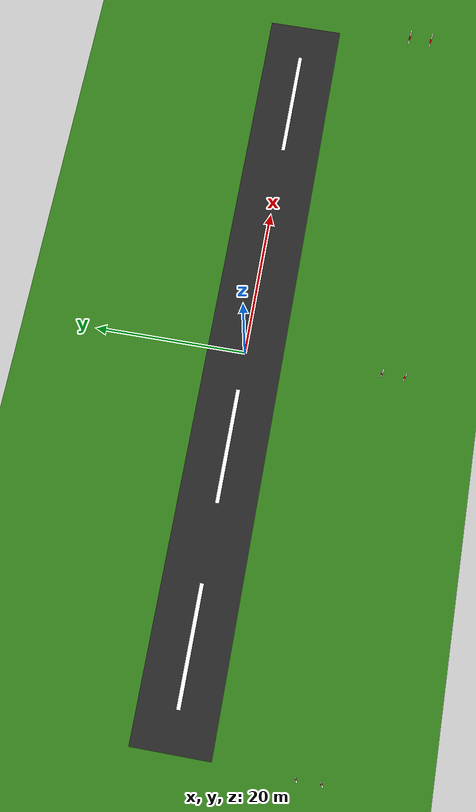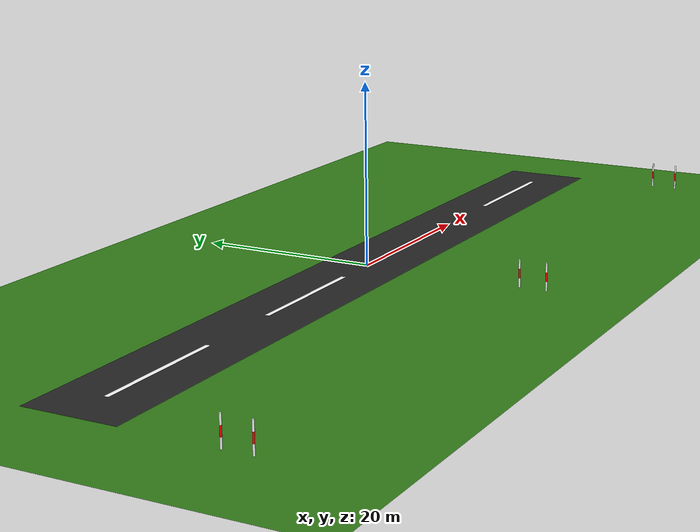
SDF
<?xml version="1.0" ?>
<sdf version="1.9">
  <world name="test">

    <atmosphere type="adiabatic"/>
    <magnetic_field>6.0e-06 2.3e-05 -4.2e-05</magnetic_field>

    <spherical_coordinates>
      <surface_model>EARTH_WGS84</surface_model>
      <world_frame_orientation>ENU</world_frame_orientation>
      <latitude_deg>41.100799</latitude_deg>
      <longitude_deg>28.551562</longitude_deg>
      <elevation>488.0</elevation>
      <heading_deg>0</heading_deg>
    </spherical_coordinates>

    <plugin filename="gz-sim-sensors-system"
            name="gz::sim::systems::Sensors">
      <render_engine>ogre2</render_engine>
    </plugin>
    <plugin filename="gz-sim-imu-system"
            name="gz::sim::systems::Imu"/>
    <plugin filename="gz-sim-air-pressure-system"
            name="gz::sim::systems::AirPressure"/>
    <plugin filename="gz-sim-navsat-system"
            name="gz::sim::systems::NavSat"/>
    <plugin filename="gz-sim-magnetometer-system"
            name="gz::sim::systems::Magnetometer"/>
    <plugin filename="gz-sim-air-speed-system"
            name="gz::sim::systems::AirSpeed"/>

    <!-- Fizik motoru -->
    <physics name="1ms" type="ignored">
      <max_step_size>0.001</max_step_size>
      <real_time_factor>1.0</real_time_factor>
    </physics>

    <!-- Gerekli eklentiler (Gazebo Sim 8 zorunlu) -->
    <plugin filename="gz-sim-physics-system"
            name="gz::sim::systems::Physics"/>
    <plugin filename="gz-sim-user-commands-system"
            name="gz::sim::systems::UserCommands"/>
    <plugin filename="gz-sim-scene-broadcaster-system"
            name="gz::sim::systems::SceneBroadcaster"/>

    <!-- Işık -->
    <light name="sun" type="directional">
      <cast_shadows>true</cast_shadows>
      <pose>0 0 10 0 0 0</pose>
      <diffuse>0.8 0.8 0.8 1</diffuse>
      <specular>0.2 0.2 0.2 1</specular>
      <direction>-0.5 0.1 -0.9</direction>
    </light>

    <!-- Zemin -->
    <model name="ground_plane">
      <static>true</static>
      <link name="link">
        <collision name="collision">
          <geometry><plane><normal>0 0 1</normal><size>500 500</size></plane></geometry>
        </collision>
        <visual name="visual">
          <geometry><plane><normal>0 0 1</normal><size>500 500</size></plane></geometry>
          <material>
            <ambient>0.2 0.5 0.1 1</ambient>
            <diffuse>0.2 0.5 0.1 1</diffuse>
          </material>
        </visual>
      </link>
    </model>

    <!--   KALKIŞ/İNİŞ PİSTİ  -->

    <!-- Pist gövdesi: 100m x 10m, merkez orijinde -->
    <model name="runway_base">
      <static>true</static>
      <pose>0 0 0.01 0 0 0</pose>
      <link name="link">
        <visual name="asphalt">
          <geometry>
            <box><size>100 10 0.01</size></box>
          </geometry>
          <material>
            <ambient>0.15 0.15 0.15 1</ambient>
            <diffuse>0.15 0.15 0.15 1</diffuse>
          </material>
        </visual>
        <collision name="col">
          <geometry><box><size>100 10 0.01</size></box></geometry>
        </collision>
      </link>
    </model>

    <!-- Merkez çizgisi (beyaz, kesik kesik için 4 parça) -->
    <!-- Aralarına 10m boşluk, her parça 15*0,5m -->
    <model name="cl_0"><static>true</static><pose>-37.5 0 0.01 0 0 0</pose>
      <link name="l"><visual name="v"><geometry><box><size>15 0.5 0.02</size></box></geometry>
        <material><ambient>1 1 1 1</ambient><diffuse>1 1 1 1</diffuse></material>
      </visual></link></model>

    <model name="cl_1"><static>true</static><pose>-12.5 0 0.01 0 0 0</pose>
      <link name="l"><visual name="v"><geometry><box><size>15 0.5 0.02</size></box></geometry>
        <material><ambient>1 1 1 1</ambient><diffuse>1 1 1 1</diffuse></material>
      </visual></link></model>

    <model name="cl_2"><static>true</static><pose>12.5 0 0.01 0 0 0</pose>
      <link name="l"><visual name="v"><geometry><box><size>15 0.5 0.02</size></box></geometry>
        <material><ambient>1 1 1 1</ambient><diffuse>1 1 1 1</diffuse></material>
      </visual></link></model>

    <model name="cl_3"><static>true</static><pose>37.5 0 0.01 0 0 0</pose>
      <link name="l"><visual name="v"><geometry><box><size>15 0.5 0.02</size></box></geometry>
        <material><ambient>1 1 1 1</ambient><diffuse>1 1 1 1</diffuse></material>
      </visual></link></model>

    <!-- Direkler-->
    <model name="pole_11">
      <static>true</static>
      <pose>-50 -15 0 0 0 0</pose>
      <link name="link_11">
        <visual name="seg_alt">
          <pose>0 0 0.5 0 0 0</pose>
          <geometry><cylinder><radius>0.10</radius><length>1.0</length></cylinder></geometry>
          <material><ambient>1 1 1 1</ambient><diffuse>1 1 1 1</diffuse></material>
        </visual>
        <collision name="seg_alt_col">
          <pose>0 0 0.5 0 0 0</pose>
          <geometry><cylinder><radius>0.10</radius><length>1.0</length></cylinder></geometry>
        </collision>

        <visual name="seg_orta">
          <pose>0 0 1.5 0 0 0</pose>
          <geometry><cylinder><radius>0.10</radius><length>1.0</length></cylinder></geometry>
          <material><ambient>1 0 0 1</ambient><diffuse>1 0 0 1</diffuse></material>
        </visual>
        <collision name="seg_orta_col">
          <pose>0 0 1.5 0 0 0</pose>
          <geometry><cylinder><radius>0.10</radius><length>1.0</length></cylinder></geometry>
        </collision>

        <visual name="seg_ust">
          <pose>0 0 2.5 0 0 0</pose>
          <geometry><cylinder><radius>0.10</radius><length>1.0</length></cylinder></geometry>
          <material><ambient>1 1 1 1</ambient><diffuse>1 1 1 1</diffuse></material>
        </visual>
        <collision name="seg_ust_col">
          <pose>0 0 2.5 0 0 0</pose>
          <geometry><cylinder><radius>0.10</radius><length>1.0</length></cylinder></geometry>
        </collision>
      </link>
    </model>

    <model name="pole_12">
      <static>true</static>
      <pose>-50 -18 0 0 0 0</pose>
      <link name="link_12">
        <visual name="seg_alt">
          <pose>0 0 0.5 0 0 0</pose>
          <geometry><cylinder><radius>0.10</radius><length>1.0</length></cylinder></geometry>
          <material><ambient>1 1 1 1</ambient><diffuse>1 1 1 1</diffuse></material>
        </visual>
        <collision name="seg_alt_col">
          <pose>0 0 0.5 0 0 0</pose>
          <geometry><cylinder><radius>0.10</radius><length>1.0</length></cylinder></geometry>
        </collision>

        <visual name="seg_orta">
          <pose>0 0 1.5 0 0 0</pose>
          <geometry><cylinder><radius>0.10</radius><length>1.0</length></cylinder></geometry>
          <material><ambient>1 0 0 1</ambient><diffuse>1 0 0 1</diffuse></material>
        </visual>
        <collision name="seg_orta_col">
          <pose>0 0 1.5 0 0 0</pose>
          <geometry><cylinder><radius>0.10</radius><length>1.0</length></cylinder></geometry>
        </collision>

        <visual name="seg_ust">
          <pose>0 0 2.5 0 0 0</pose>
          <geometry><cylinder><radius>0.10</radius><length>1.0</length></cylinder></geometry>
          <material><ambient>1 1 1 1</ambient><diffuse>1 1 1 1</diffuse></material>
        </visual>
        <collision name="seg_ust_col">
          <pose>0 0 2.5 0 0 0</pose>
          <geometry><cylinder><radius>0.10</radius><length>1.0</length></cylinder></geometry>
        </collision>
      </link>
    </model>

    <model name="pole_21">
      <static>true</static>
      <pose>0 -18 0 0 0 0</pose>
      <link name="link_21">
        <visual name="seg_alt">
          <pose>0 0 0.5 0 0 0</pose>
          <geometry><cylinder><radius>0.10</radius><length>1.0</length></cylinder></geometry>
          <material><ambient>1 1 1 1</ambient><diffuse>1 1 1 1</diffuse></material>
        </visual>
        <collision name="seg_alt_col">
          <pose>0 0 0.5 0 0 0</pose>
          <geometry><cylinder><radius>0.10</radius><length>1.0</length></cylinder></geometry>
        </collision>

        <visual name="seg_orta">
          <pose>0 0 1.5 0 0 0</pose>
          <geometry><cylinder><radius>0.10</radius><length>1.0</length></cylinder></geometry>
          <material><ambient>1 0 0 1</ambient><diffuse>1 0 0 1</diffuse></material>
        </visual>
        <collision name="seg_orta_col">
          <pose>0 0 1.5 0 0 0</pose>
          <geometry><cylinder><radius>0.10</radius><length>1.0</length></cylinder></geometry>
        </collision>

        <visual name="seg_ust">
          <pose>0 0 2.5 0 0 0</pose>
          <geometry><cylinder><radius>0.10</radius><length>1.0</length></cylinder></geometry>
          <material><ambient>1 1 1 1</ambient><diffuse>1 1 1 1</diffuse></material>
        </visual>
        <collision name="seg_ust_col">
          <pose>0 0 2.5 0 0 0</pose>
          <geometry><cylinder><radius>0.10</radius><length>1.0</length></cylinder></geometry>
        </collision>
      </link>
    </model>

    <model name="pole_22">
      <static>true</static>
      <pose>0 -21 0 0 0 0</pose>
      <link name="link_22">
        <visual name="seg_alt">
          <pose>0 0 0.5 0 0 0</pose>
          <geometry><cylinder><radius>0.10</radius><length>1.0</length></cylinder></geometry>
          <material><ambient>1 1 1 1</ambient><diffuse>1 1 1 1</diffuse></material>
        </visual>
        <collision name="seg_alt_col">
          <pose>0 0 0.5 0 0 0</pose>
          <geometry><cylinder><radius>0.10</radius><length>1.0</length></cylinder></geometry>
        </collision>

        <visual name="seg_orta">
          <pose>0 0 1.5 0 0 0</pose>
          <geometry><cylinder><radius>0.10</radius><length>1.0</length></cylinder></geometry>
          <material><ambient>1 0 0 1</ambient><diffuse>1 0 0 1</diffuse></material>
        </visual>
        <collision name="seg_orta_col">
          <pose>0 0 1.5 0 0 0</pose>
          <geometry><cylinder><radius>0.10</radius><length>1.0</length></cylinder></geometry>
        </collision>

        <visual name="seg_ust">
          <pose>0 0 2.5 0 0 0</pose>
          <geometry><cylinder><radius>0.10</radius><length>1.0</length></cylinder></geometry>
          <material><ambient>1 1 1 1</ambient><diffuse>1 1 1 1</diffuse></material>
        </visual>
        <collision name="seg_ust_col">
          <pose>0 0 2.5 0 0 0</pose>
          <geometry><cylinder><radius>0.10</radius><length>1.0</length></cylinder></geometry>
        </collision>
      </link>
    </model>

    <model name="pole_31">
      <static>true</static>
      <pose>50 -15 0 0 0 0</pose>
      <link name="link_31">
        <visual name="seg_alt">
          <pose>0 0 0.5 0 0 0</pose>
          <geometry><cylinder><radius>0.10</radius><length>1.0</length></cylinder></geometry>
          <material><ambient>1 1 1 1</ambient><diffuse>1 1 1 1</diffuse></material>
        </visual>
        <collision name="seg_alt_col">
          <pose>0 0 0.5 0 0 0</pose>
          <geometry><cylinder><radius>0.10</radius><length>1.0</length></cylinder></geometry>
        </collision>

        <visual name="seg_orta">
          <pose>0 0 1.5 0 0 0</pose>
          <geometry><cylinder><radius>0.10</radius><length>1.0</length></cylinder></geometry>
          <material><ambient>1 0 0 1</ambient><diffuse>1 0 0 1</diffuse></material>
        </visual>
        <collision name="seg_orta_col">
          <pose>0 0 1.5 0 0 0</pose>
          <geometry><cylinder><radius>0.10</radius><length>1.0</length></cylinder></geometry>
        </collision>

        <visual name="seg_ust">
          <pose>0 0 2.5 0 0 0</pose>
          <geometry><cylinder><radius>0.10</radius><length>1.0</length></cylinder></geometry>
          <material><ambient>1 1 1 1</ambient><diffuse>1 1 1 1</diffuse></material>
        </visual>
        <collision name="seg_ust_col">
          <pose>0 0 2.5 0 0 0</pose>
          <geometry><cylinder><radius>0.10</radius><length>1.0</length></cylinder></geometry>
        </collision>
      </link>
    </model>

    <model name="pole_32">
      <static>true</static>
      <pose>50 -18 0 0 0 0</pose>
      <link name="link_32">
        <visual name="seg_alt">
          <pose>0 0 0.5 0 0 0</pose>
          <geometry><cylinder><radius>0.10</radius><length>1.0</length></cylinder></geometry>
          <material><ambient>1 1 1 1</ambient><diffuse>1 1 1 1</diffuse></material>
        </visual>
        <collision name="seg_alt_col">
          <pose>0 0 0.5 0 0 0</pose>
          <geometry><cylinder><radius>0.10</radius><length>1.0</length></cylinder></geometry>
        </collision>

        <visual name="seg_orta">
          <pose>0 0 1.5 0 0 0</pose>
          <geometry><cylinder><radius>0.10</radius><length>1.0</length></cylinder></geometry>
          <material><ambient>1 0 0 1</ambient><diffuse>1 0 0 1</diffuse></material>
        </visual>
        <collision name="seg_orta_col">
          <pose>0 0 1.5 0 0 0</pose>
          <geometry><cylinder><radius>0.10</radius><length>1.0</length></cylinder></geometry>
        </collision>

        <visual name="seg_ust">
          <pose>0 0 2.5 0 0 0</pose>
          <geometry><cylinder><radius>0.10</radius><length>1.0</length></cylinder></geometry>
          <material><ambient>1 1 1 1</ambient><diffuse>1 1 1 1</diffuse></material>
        </visual>
        <collision name="seg_ust_col">
          <pose>0 0 2.5 0 0 0</pose>
          <geometry><cylinder><radius>0.10</radius><length>1.0</length></cylinder></geometry>
        </collision>
      </link>
    </model>
  </world>
</sdf>
